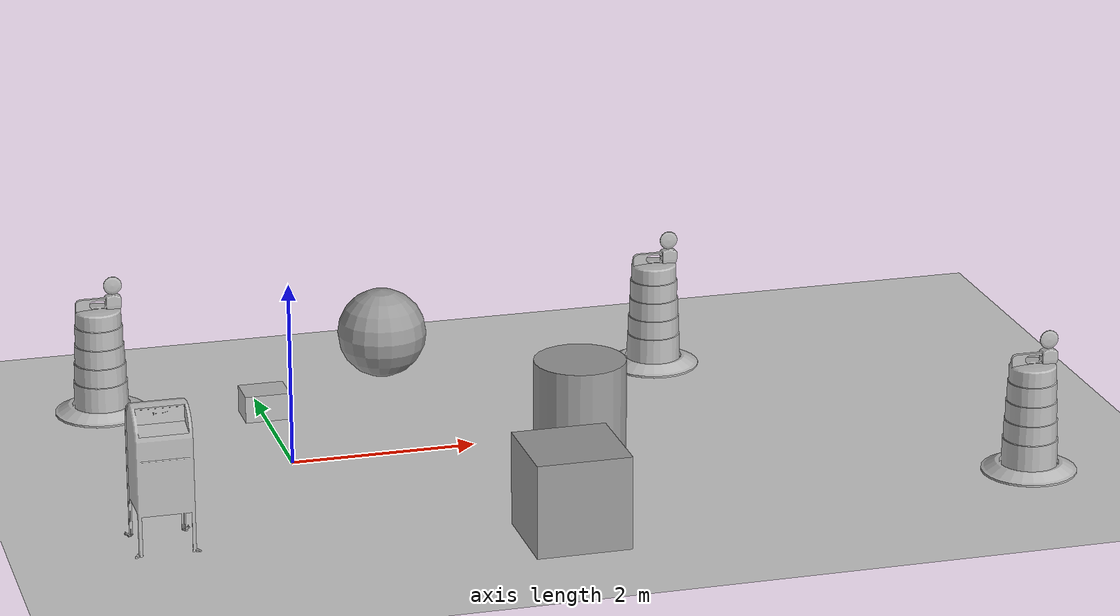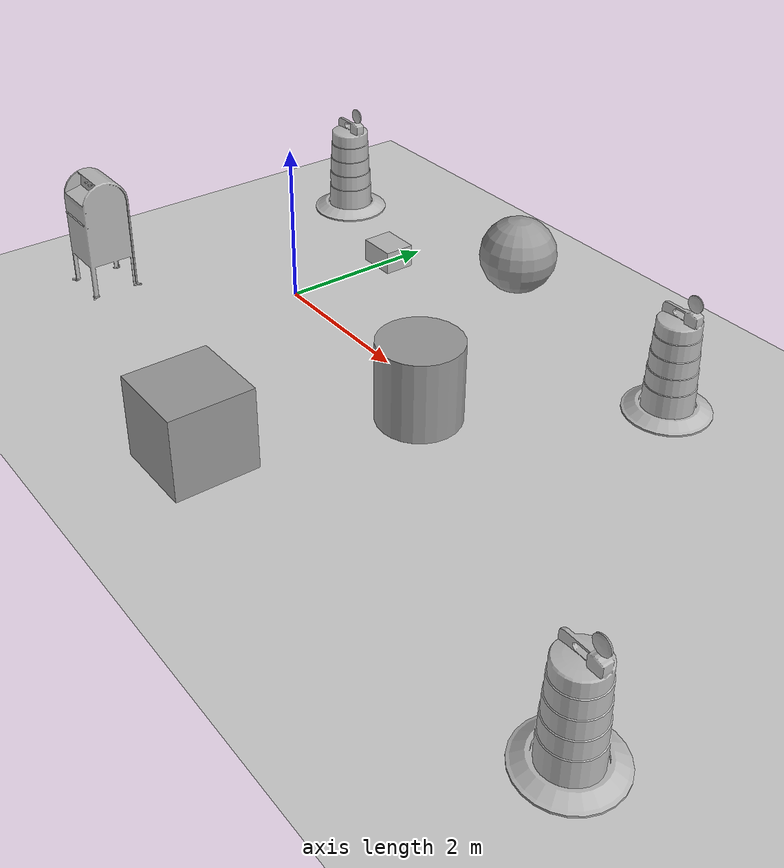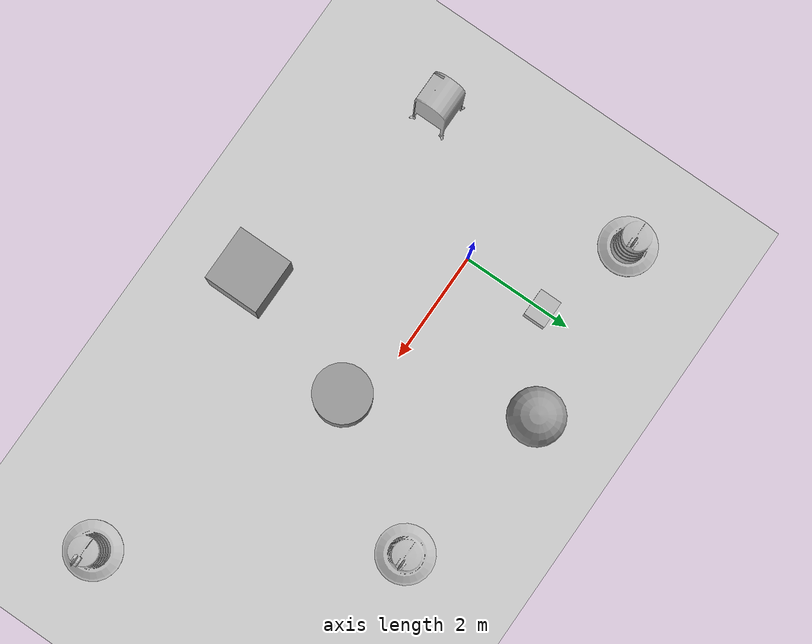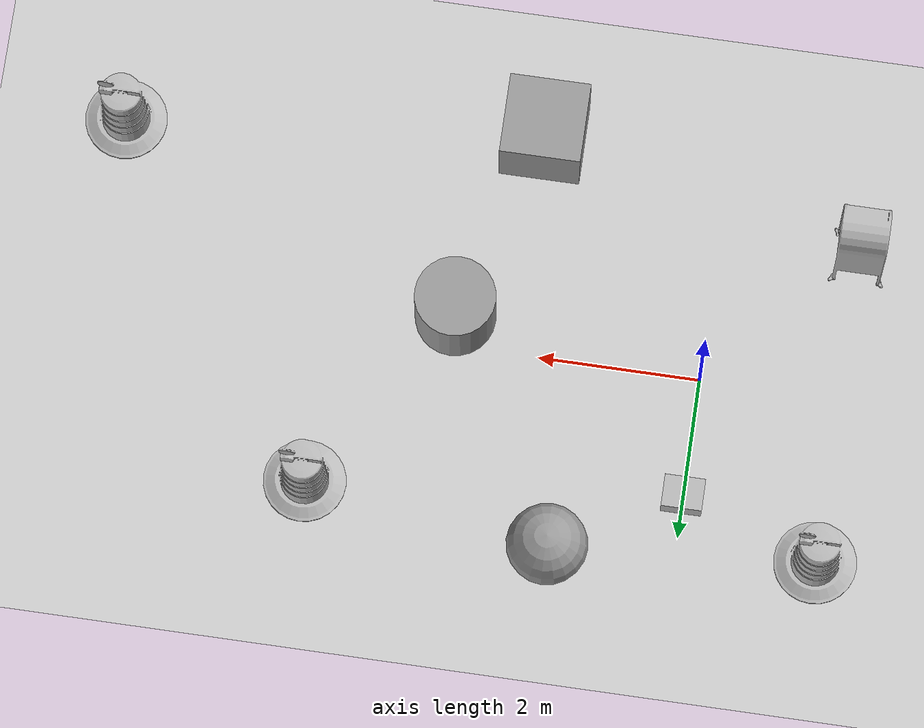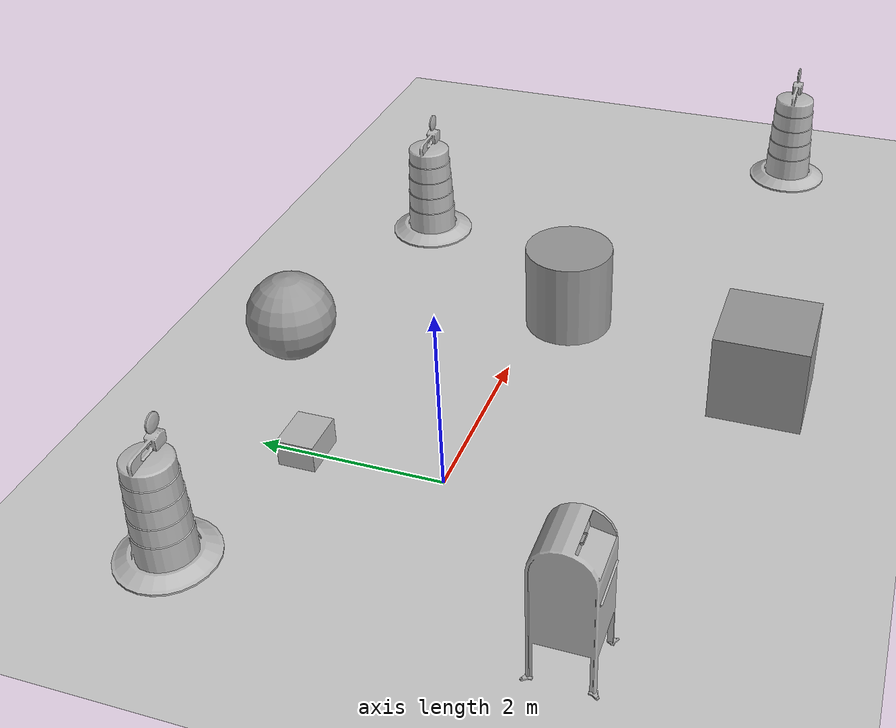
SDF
<sdf version="1.7">
 <world name="default">
  <light name="sun" type="directional">
   <pose>0 0 10 0 -0 0</pose>
   <diffuse>0.8 0.8 0.8 1</diffuse>
   <specular>0.2 0.2 0.2 1</specular>
   <attenuation>
    <range>1000</range>
    <constant>0.9</constant>
    <linear>0.01</linear>
    <quadratic>0.001</quadratic>
   </attenuation>
   <direction>-0.5 0.1 -0.9</direction>
   <spot><inner_angle>0</inner_angle><outer_angle>0</outer_angle><falloff>0</falloff></spot>
  </light>
  <model name="ground_plane">
   <static>1</static>
   <link name="link">
    <collision name="collision">
     <geometry><plane><normal>0 0 1</normal><size>100 100</size></plane></geometry>
     <surface><friction><ode><mu>100</mu><mu2>50</mu2></ode></friction></surface>
    </collision>
    <visual name="visual">
     <cast_shadows>0</cast_shadows>
     <geometry><plane><normal>0 0 1</normal><size>100 100</size></plane></geometry>
     <material>
      <script><uri>file://media/materials/scripts/gazebo.material</uri><name>Gazebo/Grey</name></script>
     </material>
    </visual>
   </link>
  </model>
  <gravity>0 0 -9.8</gravity>
  <magnetic_field>6e-06 2.3e-05 -4.2e-05</magnetic_field>
  <atmosphere type="adiabatic"/>
  <physics type="ode">
   <max_step_size>0.001</max_step_size>
   <real_time_factor>1</real_time_factor>
   <real_time_update_rate>1000</real_time_update_rate>
  </physics>
  <scene><ambient>0.4 0.4 0.4 1</ambient><background>0.7 0.7 0.7 1</background><shadows>1</shadows></scene>
  <audio><device>default</device></audio>
  <spherical_coordinates>
   <surface_model>EARTH_WGS84</surface_model>
   <latitude_deg>0</latitude_deg>
   <longitude_deg>0</longitude_deg>
   <elevation>0</elevation>
   <heading_deg>0</heading_deg>
  </spherical_coordinates>
  <model name="unit_cylinder">
   <pose>3.07877 -0.378019 0.499992 -3e-06 3e-06 0</pose>
   <link name="link">
    <inertial>
     <mass>1</mass>
     <inertia><ixx>0.145833</ixx><ixy>0</ixy><ixz>0</ixz><iyy>0.145833</iyy><iyz>0</iyz><izz>0.125</izz></inertia>
    </inertial>
    <collision name="collision">
     <geometry><cylinder><radius>0.5</radius><length>1</length></cylinder></geometry>
    </collision>
    <visual name="visual">
     <geometry><cylinder><radius>0.5</radius><length>1</length></cylinder></geometry>
     <material>
      <script><name>Gazebo/Grey</name><uri>file://media/materials/scripts/gazebo.material</uri></script>
     </material>
    </visual>
   </link>
  </model>
  <model name="unit_sphere">
   <pose>1.55619 2.40725 0.5 0 -0 0</pose>
   <link name="link">
    <inertial>
     <mass>1</mass>
     <inertia><ixx>0.1</ixx><ixy>0</ixy><ixz>0</ixz><iyy>0.1</iyy><iyz>0</iyz><izz>0.1</izz></inertia>
    </inertial>
    <collision name="collision"><geometry><sphere><radius>0.5</radius></sphere></geometry></collision>
    <visual name="visual">
     <geometry><sphere><radius>0.5</radius></sphere></geometry>
     <material>
      <script><name>Gazebo/Grey</name><uri>file://media/materials/scripts/gazebo.material</uri></script>
     </material>
    </visual>
   </link>
  </model>
  <model name="unit_box">
   <pose>2.31045 -2.77148 0.499995 0 1e-05 0</pose>
   <link name="link">
    <inertial>
     <mass>1</mass>
     <inertia>
      <ixx>0.166667</ixx>
      <ixy>0</ixy>
      <ixz>0</ixz>
      <iyy>0.166667</iyy>
      <iyz>0</iyz>
      <izz>0.166667</izz>
     </inertia>
    </inertial>
    <collision name="collision"><geometry><box><size>1 1 1</size></box></geometry></collision>
    <visual name="visual">
     <geometry><box><size>1 1 1</size></box></geometry>
     <material>
      <script><name>Gazebo/Grey</name><uri>file://media/materials/scripts/gazebo.material</uri></script>
     </material>
    </visual>
   </link>
  </model>
  <model name="Construction Barrel">
   <link name="link">
    <inertial>
     <pose>0 0 0.4 0 -0 0</pose>
     <mass>500</mass>
     <inertia><ixx>51.2096</ixx><iyy>51.2096</iyy><izz>25</izz><ixy>0</ixy><ixz>0</ixz><iyz>0</iyz></inertia>
    </inertial>
    <collision name="collision">
     <geometry><mesh><uri>model://construction_barrel/meshes/construction_barrel.dae</uri></mesh></geometry>
    </collision>
    <visual name="visual">
     <geometry><mesh><uri>model://construction_barrel/meshes/construction_barrel.dae</uri></mesh></geometry>
    </visual>
   </link>
   <pose>4.60489 1.94039 -1e-06 1e-06 -9e-06 -1e-05</pose>
  </model>
  <model name="Construction Barrel_0">
   <link name="link">
    <inertial>
     <pose>0 0 0.4 0 -0 0</pose>
     <mass>500</mass>
     <inertia><ixx>51.2096</ixx><iyy>51.2096</iyy><izz>25</izz><ixy>0</ixy><ixz>0</ixz><iyz>0</iyz></inertia>
    </inertial>
    <collision name="collision">
     <geometry><mesh><uri>model://construction_barrel/meshes/construction_barrel.dae</uri></mesh></geometry>
    </collision>
    <visual name="visual">
     <geometry><mesh><uri>model://construction_barrel/meshes/construction_barrel.dae</uri></mesh></geometry>
    </visual>
   </link>
   <pose>7.48703 -2.29918 -1e-06 -8e-06 -2e-06 -9e-06</pose>
  </model>
  <model name="Construction Barrel_1">
   <link name="link">
    <inertial>
     <pose>0 0 0.4 0 -0 0</pose>
     <mass>500</mass>
     <inertia><ixx>51.2096</ixx><iyy>51.2096</iyy><izz>25</izz><ixy>0</ixy><ixz>0</ixz><iyz>0</iyz></inertia>
    </inertial>
    <collision name="collision">
     <geometry><mesh><uri>model://construction_barrel/meshes/construction_barrel.dae</uri></mesh></geometry>
    </collision>
    <visual name="visual">
     <geometry><mesh><uri>model://construction_barrel/meshes/construction_barrel.dae</uri></mesh></geometry>
    </visual>
   </link>
   <pose>-1.69782 2.0701 0 0 0 -9e-06</pose>
  </model>
  <model name="cardboard_box">
   <pose>0.008109 1.48936 0.149 0 -0 0</pose>
   <link name="link">
    <inertial>
     <mass>2</mass>
     <inertia>
      <ixx>0.0416667</ixx>
      <ixy>0</ixy>
      <ixz>0</ixz>
      <iyy>0.0566667</iyy>
      <iyz>0</iyz>
      <izz>0.0683333</izz>
     </inertia>
    </inertial>
    <collision name="collision">
     <geometry><box><size>0.5 0.4 0.3</size></box></geometry>
     <surface>
      <friction><ode><mu>1</mu><mu2>1</mu2></ode></friction>
      <contact><ode><kp>1e+07</kp><kd>1</kd><min_depth>0.001</min_depth><max_vel>0.1</max_vel></ode></contact>
     </surface>
    </collision>
    <visual name="visual">
     <pose>0 0 -0.15 0 -0 0</pose>
     <geometry>
      <mesh><uri>model://cardboard_box/meshes/cardboard_box.dae</uri><scale>1.25932 1.00745 0.755591</scale></mesh>
     </geometry>
    </visual>
   </link>
  </model>
  <model name="postbox">
   <static>1</static>
   <link name="link">
    <collision name="collision">
     <geometry><mesh><uri>model://postbox/meshes/postbox.dae</uri></mesh></geometry>
    </collision>
    <visual name="visual"><geometry><mesh><uri>model://postbox/meshes/postbox.dae</uri></mesh></geometry></visual>
   </link>
   <pose>-1.73851 -1.82285 0 0 -0 0</pose>
  </model>
 </world>
</sdf>
